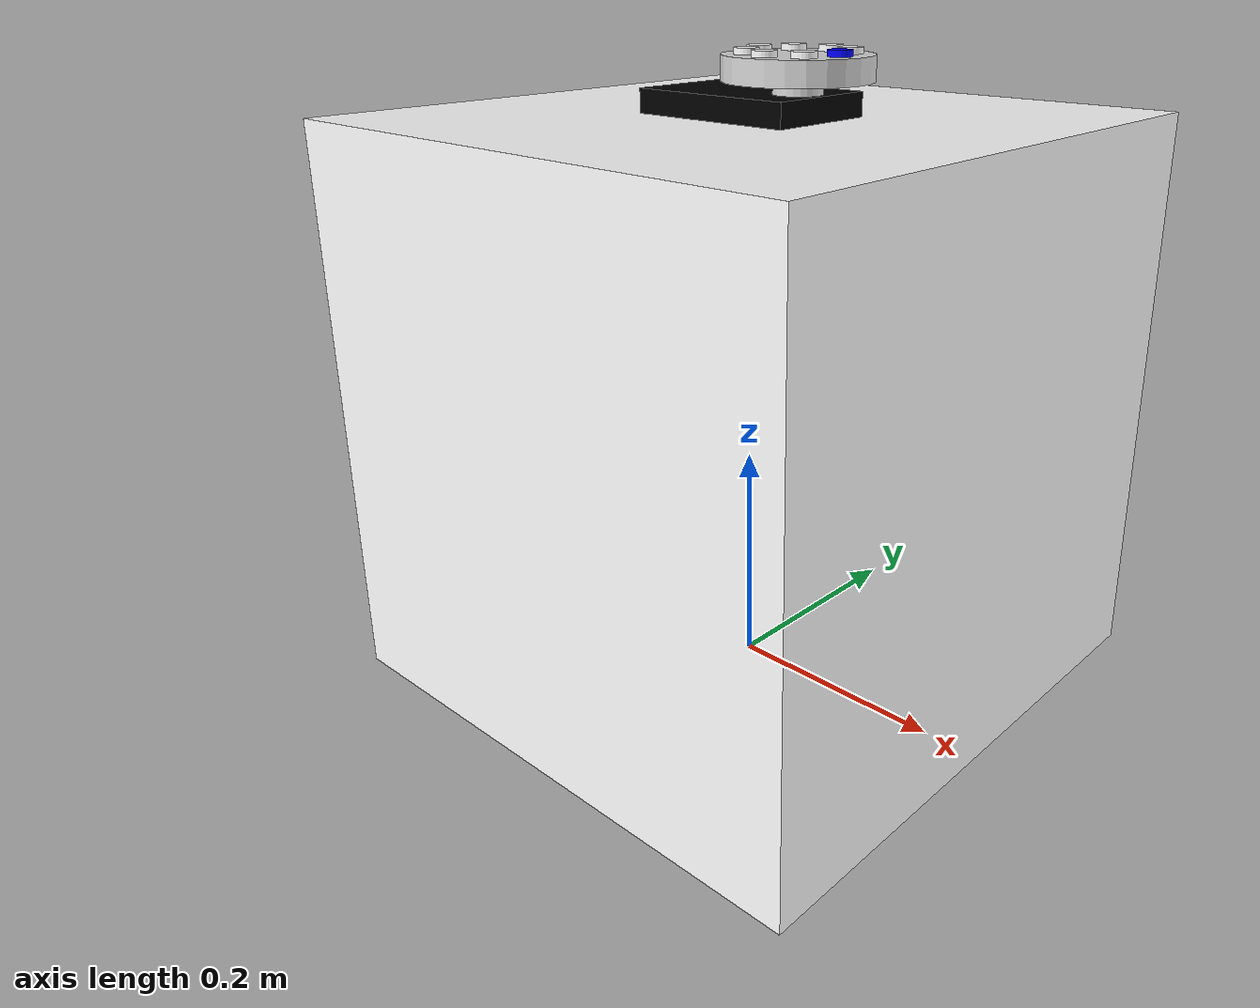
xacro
<?xml version="1.0"?>
<robot  name="rotary_table_v2" xmlns:xacro="http://www.ros.org/wiki/xacro">

    <!--              Constants               -->
    <xacro:property name="DEG2RAD" value="0.01745329252" />
    <xacro:property name="RED2DEG" value="57.295779513" />
    <xacro:property name="M_PI" value="3.141592" />

    <!-- Import all Gazebo-customization elements, including Gazebo colors -->
    <xacro:include filename="$(find scara_v2_full_description)/urdf/rotary_table_v2_gazebo.gazebo" />

    <!--        Import Material colors        -->
    <xacro:include filename="$(find scara_v2_full_description)/urdf/materials.xacro" />

    <link name="world"/>
    <!--Casual box-->
    <link name="casualBox">
        <inertial>
            <origin xyz="0 0 0" rpy="0 0 0" />
            <mass value="1" />
            <inertia ixx="1" ixy="0" ixz="0"
                     iyy="1" iyz="0"
                     izz="1" />
        </inertial>
        <visual>
            <origin xyz="0 0 0" rpy="0 0 0"/>
            <geometry>
                <box size="0.5 0.5 0.5"/>
            </geometry>
            <material name="white" />
        </visual>
        <collision>
            <origin xyz="0 0 0" rpy="0 0 0" />
            <geometry>
                <box size="0.15 0.1 0.02"/>
            </geometry>
        </collision>
    </link>
    <joint name="world_to_casualBox" type="fixed">
        <parent link="world"/>
        <child link="casualBox"/>
        <origin xyz="0 0 0.25" rpy="0 0 0" />
        <axis xyz="1 0 0" />
    </joint>

    <!-- Link and Joint definitions  -->
    <link name="base">
        <inertial>
            <origin xyz="0 0 0" rpy="0 0 0" />
            <mass value="1" />
            <inertia ixx="1" ixy="0" ixz="0"
                     iyy="1" iyz="0"
                     izz="1" />
        </inertial>
        <visual>
            <origin xyz="0 0 0" rpy="0 0 0"/>
            <geometry>
                <box size="0.15 0.1 0.02"/>
            </geometry>
            <material name="sensoBlack" />
        </visual>
        <collision>
            <origin xyz="0 0 0" rpy="0 0 0" />
            <geometry>
                <box size="0.15 0.1 0.02"/>
            </geometry>
        </collision>
    </link>
    <joint name="world_to_base" type="fixed">
        <parent link="casualBox"/>
        <child link="base"/>
        <origin xyz="0 0 0.26" rpy="0 0 0" />
        <axis xyz="1 0 0" />
    </joint>

    <link name="base_link1">
        <inertial>
            <origin xyz="0 0 0" rpy="0 0 0" />
            <mass value="1" />
            <inertia ixx="1" ixy="0" ixz="0"
                     iyy="1" iyz="0"
                     izz="1" />
        </inertial>
        <visual>
            <origin xyz="0 0 0" rpy="0 0 0"/>
            <geometry>
                <cylinder length="0.01" radius="0.02"/>
            </geometry>
            <material name="sensoSilver" />
        </visual>
        <collision>
            <origin xyz="0 0 0" rpy="0 0 0" />
            <geometry>
                <cylinder length="0.01" radius="0.02"/>
            </geometry>
        </collision>
    </link>
    <joint name="base_to_base_link1" type="fixed">
        <parent link="base"/>
        <child link="base_link1"/>
        <origin xyz="0.05 0 0.015" rpy="0 0 0"/>
        <axis xyz="0 0 1" />
    </joint>

    <link name="link1">
        <inertial>
            <origin xyz="0 0 0" rpy="0 0 0" />
            <mass value="1" />
            <inertia ixx="1" ixy="0" ixz="0"
                     iyy="1" iyz="0"
                     izz="1" />
        </inertial>
        <visual>
            <origin xyz="0 0 0" rpy="0 0 0"/>
            <geometry>
                <cylinder length="0.02" radius="0.06"/>
            </geometry>
            <material name="sensoSilver" />
        </visual>
        <collision>
            <origin xyz="0 0 0" rpy="0 0 0" />
            <geometry>
                <cylinder length="0.02" radius="0.06"/>
            </geometry>
        </collision>
    </link>
    <joint name="rotary_table_joint" type="revolute">    <!-- joint name base_link1_to_link1-->
        <parent link="base_link1"/>
        <child link="link1"/>
        <origin xyz="0 0 0.015" rpy="0 0 0"/>
        <axis xyz="0 0 1" />
        <limit effort="100" lower="0" upper="${2*M_PI}" velocity="0.5"/>
    </joint>

    <link name="hole1">
        <inertial>
            <origin xyz="0 0 0" rpy="0 0 0" />
            <mass value="0.1" />
            <inertia ixx="1E-9" ixy="0" ixz="0"
                     iyy="1E-9" iyz="0"
                     izz="1E-9" />
        </inertial>
        <visual>
            <origin xyz="0 0 0" rpy="0 0 0"/>
            <geometry>
                <cylinder length="0.005" radius="0.01"/>
            </geometry>
            <material name="blue" />
        </visual>
        <collision>
            <origin xyz="0 0 0" rpy="0 0 0" />
            <geometry>
                <cylinder length="0.005" radius="0.01"/>
            </geometry>
        </collision>
    </link>
    <joint name="link1_to_hole1" type="fixed">
        <parent link="link1"/>
        <child link="hole1"/>
        <origin xyz="0.04 0 0.0125" rpy="0 0 0"/>
    </joint>

    <link name="hole2">
        <inertial>
            <origin xyz="0 0 0" rpy="0 0 0" />
            <mass value="0.1" />
            <inertia ixx="1E-9" ixy="0" ixz="0"
                     iyy="1E-9" iyz="0"
                     izz="1E-9" />
        </inertial>
        <visual>
            <origin xyz="0 0 0" rpy="0 0 0"/>
            <geometry>
                <cylinder length="0.005" radius="0.01"/>
            </geometry>
            <material name="white" />
        </visual>
        <collision>
            <origin xyz="0 0 0" rpy="0 0 0" />
            <geometry>
                <cylinder length="0.005" radius="0.01"/>
            </geometry>
        </collision>
    </link>
    <joint name="link1_to_hole2" type="fixed">
        <parent link="link1"/>
        <child link="hole2"/>
        <origin xyz="0.02828 0.02828 0.0125" rpy="0 0 0"/>
    </joint>

    <link name="hole3">
        <inertial>
            <origin xyz="0 0 0" rpy="0 0 0" />
            <mass value="0.1" />
            <inertia ixx="1E-9" ixy="0" ixz="0"
                     iyy="1E-9" iyz="0"
                     izz="1E-9" />
        </inertial>
        <visual>
            <origin xyz="0 0 0" rpy="0 0 0"/>
            <geometry>
                <cylinder length="0.005" radius="0.01"/>
            </geometry>
            <material name="white" />
        </visual>
        <collision>
            <origin xyz="0 0 0" rpy="0 0 0" />
            <geometry>
                <cylinder length="0.005" radius="0.01"/>
            </geometry>
        </collision>
    </link>
    <joint name="link1_to_hole3" type="fixed">
        <parent link="link1"/>
        <child link="hole3"/>
        <origin xyz="0 0.04 0.0125" rpy="0 0 0"/>
    </joint>

    <link name="hole4">
        <inertial>
            <origin xyz="0 0 0" rpy="0 0 0" />
            <mass value="0.1" />
            <inertia ixx="1E-9" ixy="0" ixz="0"
                     iyy="1E-9" iyz="0"
                     izz="1E-9" />
        </inertial>
        <visual>
            <origin xyz="0 0 0" rpy="0 0 0"/>
            <geometry>
                <cylinder length="0.005" radius="0.01"/>
            </geometry>
            <material name="white" />
        </visual>
        <collision>
            <origin xyz="0 0 0" rpy="0 0 0" />
            <geometry>
                <cylinder length="0.005" radius="0.01"/>
            </geometry>
        </collision>
    </link>
    <joint name="link1_to_hole4" type="fixed">
        <parent link="link1"/>
        <child link="hole4"/>
        <origin xyz="-0.02828 0.02828 0.0125" rpy="0 0 0"/>
    </joint>

    <link name="hole5">
        <inertial>
            <origin xyz="0 0 0" rpy="0 0 0" />
            <mass value="0.1" />
            <inertia ixx="1E-9" ixy="0" ixz="0"
                     iyy="1E-9" iyz="0"
                     izz="1E-9" />
        </inertial>
        <visual>
            <origin xyz="0 0 0" rpy="0 0 0"/>
            <geometry>
                <cylinder length="0.005" radius="0.01"/>
            </geometry>
            <material name="white" />
        </visual>
        <collision>
            <origin xyz="0 0 0" rpy="0 0 0" />
            <geometry>
                <cylinder length="0.005" radius="0.01"/>
            </geometry>
        </collision>
    </link>
    <joint name="link1_to_hole5" type="fixed">
        <parent link="link1"/>
        <child link="hole5"/>
        <origin xyz="-0.04 0 0.0125" rpy="0 0 0"/>
    </joint>

    <link name="hole6">
        <inertial>
            <origin xyz="0 0 0" rpy="0 0 0" />
            <mass value="0.1" />
            <inertia ixx="1E-9" ixy="0" ixz="0"
                     iyy="1E-9" iyz="0"
                     izz="1E-9" />
        </inertial>
        <visual>
            <origin xyz="0 0 0" rpy="0 0 0"/>
            <geometry>
                <cylinder length="0.005" radius="0.01"/>
            </geometry>
            <material name="white" />
        </visual>
        <collision>
            <origin xyz="0 0 0" rpy="0 0 0" />
            <geometry>
                <cylinder length="0.005" radius="0.01"/>
            </geometry>
        </collision>
    </link>
    <joint name="link1_to_hole6" type="fixed">
        <parent link="link1"/>
        <child link="hole6"/>
        <origin xyz="-0.02828 -0.02828 0.0125" rpy="0 0 0"/>
    </joint>

    <link name="hole7">
        <inertial>
            <origin xyz="0 0 0" rpy="0 0 0" />
            <mass value="0.1" />
            <inertia ixx="1E-9" ixy="0" ixz="0"
                     iyy="1E-9" iyz="0"
                     izz="1E-9" />
        </inertial>
        <visual>
            <origin xyz="0 0 0" rpy="0 0 0"/>
            <geometry>
                <cylinder length="0.005" radius="0.01"/>
            </geometry>
            <material name="white" />
        </visual>
        <collision>
            <origin xyz="0 0 0" rpy="0 0 0" />
            <geometry>
                <cylinder length="0.005" radius="0.01"/>
            </geometry>
        </collision>
    </link>
    <joint name="link1_to_hole7" type="fixed">
        <parent link="link1"/>
        <child link="hole7"/>
        <origin xyz="0 -0.04 0.0125" rpy="0 0 0"/>
    </joint>

    <link name="hole8">
        <inertial>
            <origin xyz="0 0 0" rpy="0 0 0" />
            <mass value="0.1" />
            <inertia ixx="1E-9" ixy="0" ixz="0"
                     iyy="1E-9" iyz="0"
                     izz="1E-9" />
        </inertial>
        <visual>
            <origin xyz="0 0 0" rpy="0 0 0"/>
            <geometry>
                <cylinder length="0.005" radius="0.01"/>
            </geometry>
            <material name="white" />
        </visual>
        <collision>
            <origin xyz="0 0 0" rpy="0 0 0" />
            <geometry>
                <cylinder length="0.005" radius="0.01"/>
            </geometry>
        </collision>
    </link>
    <joint name="link1_to_hole8" type="fixed">
        <parent link="link1"/>
        <child link="hole8"/>
        <origin xyz="0.02828 -0.02828 0.0125" rpy="0 0 0"/>
    </joint>

</robot>

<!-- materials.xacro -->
<robot>

    <!--______RViz Material Color definitions_______-->
    <material name="white">
        <color rgba="1 1 1 1"/>
    </material>
    <material name="blue">
        <color rgba="0 0 1 1"/>
    </material>
    <material name="red">
        <color rgba="1 0 0 1"/>
    </material>
    <material name="green">
        <color rgba="0 1 0 1"/>
    </material>
    <material name="sensoSilver">
        <color rgba="0.839216 0.839216 0.839216 1"/>
    </material>
    <material name="sensoBlack">
        <color rgba="0 0 0 1 "/>
    </material>
    <material name="sensoGray">
        <color rgba="0.466667 0.533333 0.6 1 "/>
    </material>
    <material name="sensoDarkGray">
        <color rgba="0.156863 0.156863 0.156863 1 "/>
    </material>

</robot>
